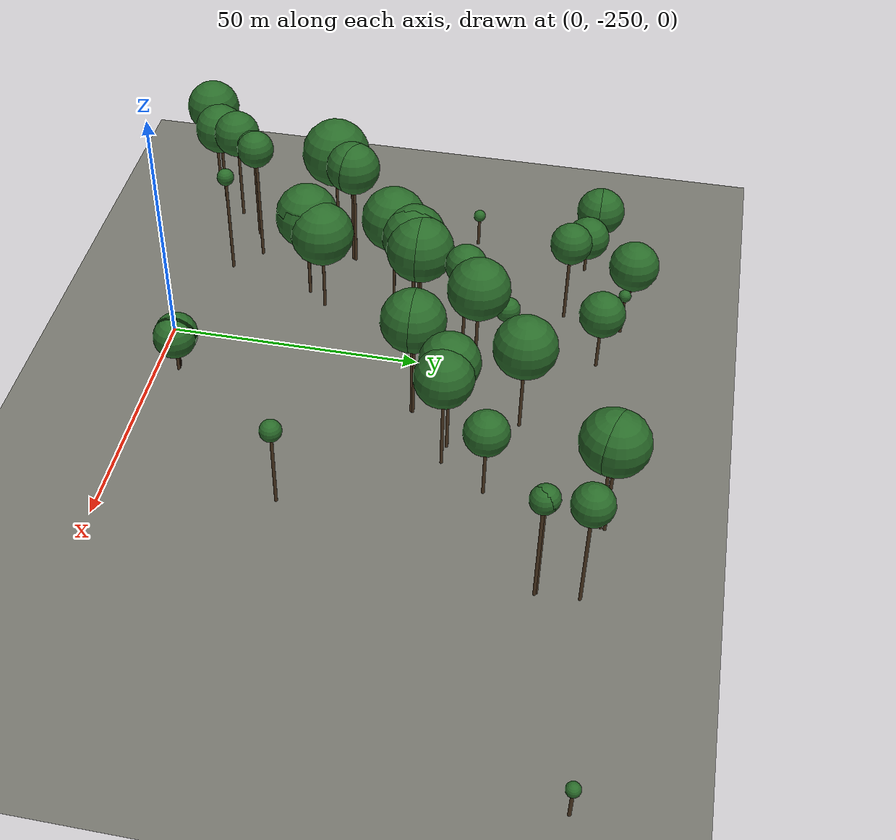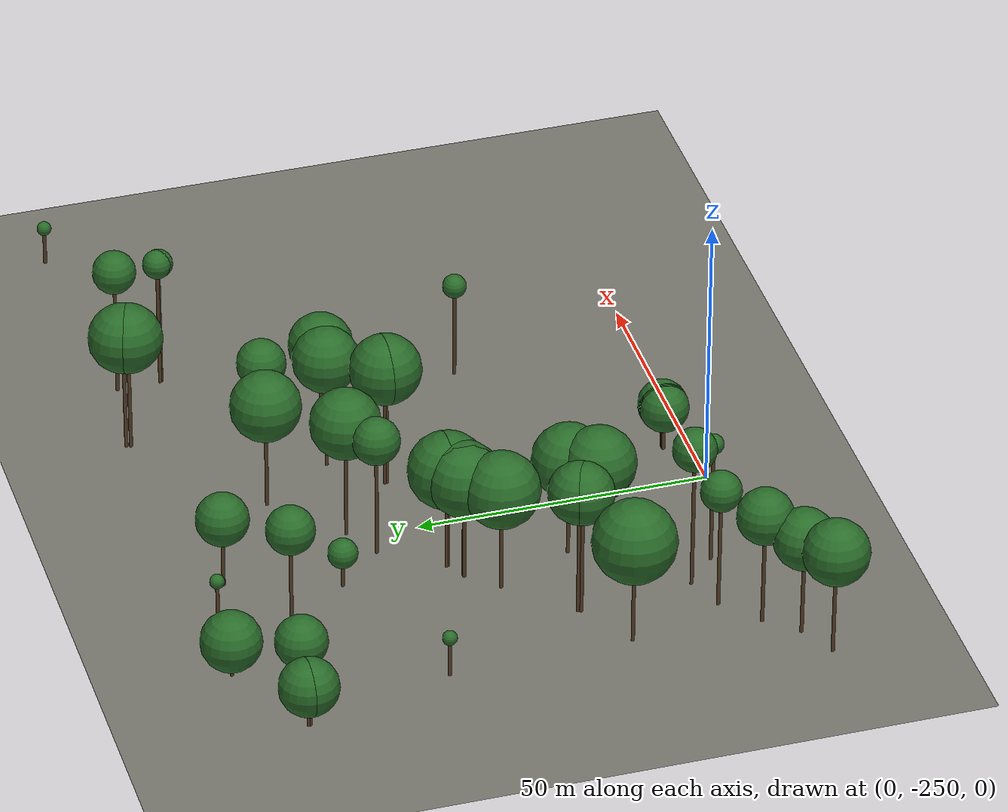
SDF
<sdf version="1.9">
 <world name="uav_arena_bk">
  <model name="ground_plane">
   <static>true</static>
   <link name="link">
    <collision name="collision">
     <geometry><plane><normal>0 0 1</normal><size>1200 1200</size></plane></geometry>
    </collision>
    <visual name="visual">
     <geometry><plane><normal>0 0 1</normal><size>1200 1200</size></plane></geometry>
     <material><ambient>0.35 0.35 0.33 1</ambient><diffuse>0.45 0.45 0.42 1</diffuse></material>
    </visual>
   </link>
  </model>
  <model name="tree_369">
   <static>true</static>
   <pose>92.484 -159.119 0 0 0 0</pose>
   <link name="link">
    <collision name="trunk_collision">
     <pose>0 0 2.960 0 0 0</pose>
     <geometry><cylinder><radius>0.30</radius><length>5.920</length></cylinder></geometry>
    </collision>
    <visual name="trunk_visual">
     <pose>0 0 2.960 0 0 0</pose>
     <geometry><cylinder><radius>0.30</radius><length>5.920</length></cylinder></geometry>
     <material><ambient>0.25 0.18 0.11 1</ambient><diffuse>0.35 0.25 0.15 1</diffuse></material>
    </visual>
    <collision name="canopy_collision">
     <pose>0 0 7.170 0 0 0</pose>
     <geometry><sphere><radius>1.250</radius></sphere></geometry>
    </collision>
    <visual name="canopy_visual">
     <pose>0 0 7.170 0 0 0</pose>
     <geometry><sphere><radius>1.250</radius></sphere></geometry>
     <material><ambient>0.10 0.28 0.10 1</ambient><diffuse>0.16 0.42 0.16 1</diffuse></material>
     <plugin filename="gz-sim-label-system" name="gz::sim::systems::Label"><label>2</label></plugin>
    </visual>
   </link>
  </model>
  <model name="tree_371">
   <static>true</static>
   <pose>35.732 -159.311 0 0 0 0</pose>
   <link name="link">
    <collision name="trunk_collision">
     <pose>0 0 8.100 0 0 0</pose>
     <geometry><cylinder><radius>0.30</radius><length>16.200</length></cylinder></geometry>
    </collision>
    <visual name="trunk_visual">
     <pose>0 0 8.100 0 0 0</pose>
     <geometry><cylinder><radius>0.30</radius><length>16.200</length></cylinder></geometry>
     <material><ambient>0.25 0.18 0.11 1</ambient><diffuse>0.35 0.25 0.15 1</diffuse></material>
    </visual>
    <collision name="canopy_collision">
     <pose>0 0 22.140 0 0 0</pose>
     <geometry><sphere><radius>5.940</radius></sphere></geometry>
    </collision>
    <visual name="canopy_visual">
     <pose>0 0 22.140 0 0 0</pose>
     <geometry><sphere><radius>5.940</radius></sphere></geometry>
     <material><ambient>0.10 0.28 0.10 1</ambient><diffuse>0.16 0.42 0.16 1</diffuse></material>
     <plugin filename="gz-sim-label-system" name="gz::sim::systems::Label"><label>2</label></plugin>
    </visual>
   </link>
  </model>
  <model name="tree_373">
   <static>true</static>
   <pose>35.478 -160.060 0 0 0 0</pose>
   <link name="link">
    <collision name="trunk_collision">
     <pose>0 0 8.100 0 0 0</pose>
     <geometry><cylinder><radius>0.30</radius><length>16.200</length></cylinder></geometry>
    </collision>
    <visual name="trunk_visual">
     <pose>0 0 8.100 0 0 0</pose>
     <geometry><cylinder><radius>0.30</radius><length>16.200</length></cylinder></geometry>
     <material><ambient>0.25 0.18 0.11 1</ambient><diffuse>0.35 0.25 0.15 1</diffuse></material>
    </visual>
    <collision name="canopy_collision">
     <pose>0 0 22.140 0 0 0</pose>
     <geometry><sphere><radius>5.940</radius></sphere></geometry>
    </collision>
    <visual name="canopy_visual">
     <pose>0 0 22.140 0 0 0</pose>
     <geometry><sphere><radius>5.940</radius></sphere></geometry>
     <material><ambient>0.10 0.28 0.10 1</ambient><diffuse>0.16 0.42 0.16 1</diffuse></material>
     <plugin filename="gz-sim-label-system" name="gz::sim::systems::Label"><label>2</label></plugin>
    </visual>
   </link>
  </model>
  <model name="tree_374">
   <static>true</static>
   <pose>-30.023 -160.205 0 0 0 0</pose>
   <link name="link">
    <collision name="trunk_collision">
     <pose>0 0 0.860 0 0 0</pose>
     <geometry><cylinder><radius>0.30</radius><length>1.720</length></cylinder></geometry>
    </collision>
    <visual name="trunk_visual">
     <pose>0 0 0.860 0 0 0</pose>
     <geometry><cylinder><radius>0.30</radius><length>1.720</length></cylinder></geometry>
     <material><ambient>0.25 0.18 0.11 1</ambient><diffuse>0.35 0.25 0.15 1</diffuse></material>
    </visual>
    <collision name="canopy_collision">
     <pose>0 0 6.870 0 0 0</pose>
     <geometry><sphere><radius>5.150</radius></sphere></geometry>
    </collision>
    <visual name="canopy_visual">
     <pose>0 0 6.870 0 0 0</pose>
     <geometry><sphere><radius>5.150</radius></sphere></geometry>
     <material><ambient>0.10 0.28 0.10 1</ambient><diffuse>0.16 0.42 0.16 1</diffuse></material>
     <plugin filename="gz-sim-label-system" name="gz::sim::systems::Label"><label>2</label></plugin>
    </visual>
   </link>
  </model>
  <model name="tree_375">
   <static>true</static>
   <pose>-17.278 -161.274 0 0 0 0</pose>
   <link name="link">
    <collision name="trunk_collision">
     <pose>0 0 4.085 0 0 0</pose>
     <geometry><cylinder><radius>0.30</radius><length>8.170</length></cylinder></geometry>
    </collision>
    <visual name="trunk_visual">
     <pose>0 0 4.085 0 0 0</pose>
     <geometry><cylinder><radius>0.30</radius><length>8.170</length></cylinder></geometry>
     <material><ambient>0.25 0.18 0.11 1</ambient><diffuse>0.35 0.25 0.15 1</diffuse></material>
    </visual>
    <collision name="canopy_collision">
     <pose>0 0 9.420 0 0 0</pose>
     <geometry><sphere><radius>1.250</radius></sphere></geometry>
    </collision>
    <visual name="canopy_visual">
     <pose>0 0 9.420 0 0 0</pose>
     <geometry><sphere><radius>1.250</radius></sphere></geometry>
     <material><ambient>0.10 0.28 0.10 1</ambient><diffuse>0.16 0.42 0.16 1</diffuse></material>
     <plugin filename="gz-sim-label-system" name="gz::sim::systems::Label"><label>2</label></plugin>
    </visual>
   </link>
  </model>
  <model name="tree_377">
   <static>true</static>
   <pose>51.968 -161.899 0 0 0 0</pose>
   <link name="link">
    <collision name="trunk_collision">
     <pose>0 0 10.235 0 0 0</pose>
     <geometry><cylinder><radius>0.30</radius><length>20.470</length></cylinder></geometry>
    </collision>
    <visual name="trunk_visual">
     <pose>0 0 10.235 0 0 0</pose>
     <geometry><cylinder><radius>0.30</radius><length>20.470</length></cylinder></geometry>
     <material><ambient>0.25 0.18 0.11 1</ambient><diffuse>0.35 0.25 0.15 1</diffuse></material>
    </visual>
    <collision name="canopy_collision">
     <pose>0 0 24.190 0 0 0</pose>
     <geometry><sphere><radius>3.720</radius></sphere></geometry>
    </collision>
    <visual name="canopy_visual">
     <pose>0 0 24.190 0 0 0</pose>
     <geometry><sphere><radius>3.720</radius></sphere></geometry>
     <material><ambient>0.10 0.28 0.10 1</ambient><diffuse>0.16 0.42 0.16 1</diffuse></material>
     <plugin filename="gz-sim-label-system" name="gz::sim::systems::Label"><label>2</label></plugin>
    </visual>
   </link>
  </model>
  <model name="tree_379">
   <static>true</static>
   <pose>-6.299 -165.084 0 0 0 0</pose>
   <link name="link">
    <collision name="trunk_collision">
     <pose>0 0 4.430 0 0 0</pose>
     <geometry><cylinder><radius>0.30</radius><length>8.860</length></cylinder></geometry>
    </collision>
    <visual name="trunk_visual">
     <pose>0 0 4.430 0 0 0</pose>
     <geometry><cylinder><radius>0.30</radius><length>8.860</length></cylinder></geometry>
     <material><ambient>0.25 0.18 0.11 1</ambient><diffuse>0.35 0.25 0.15 1</diffuse></material>
    </visual>
    <collision name="canopy_collision">
     <pose>0 0 13.360 0 0 0</pose>
     <geometry><sphere><radius>4.500</radius></sphere></geometry>
    </collision>
    <visual name="canopy_visual">
     <pose>0 0 13.360 0 0 0</pose>
     <geometry><sphere><radius>4.500</radius></sphere></geometry>
     <material><ambient>0.10 0.28 0.10 1</ambient><diffuse>0.16 0.42 0.16 1</diffuse></material>
     <plugin filename="gz-sim-label-system" name="gz::sim::systems::Label"><label>2</label></plugin>
    </visual>
   </link>
  </model>
  <model name="tree_384">
   <static>true</static>
   <pose>-46.068 -168.618 0 0 0 0</pose>
   <link name="link">
    <collision name="trunk_collision">
     <pose>0 0 1.405 0 0 0</pose>
     <geometry><cylinder><radius>0.30</radius><length>2.810</length></cylinder></geometry>
    </collision>
    <visual name="trunk_visual">
     <pose>0 0 1.405 0 0 0</pose>
     <geometry><cylinder><radius>0.30</radius><length>2.810</length></cylinder></geometry>
     <material><ambient>0.25 0.18 0.11 1</ambient><diffuse>0.35 0.25 0.15 1</diffuse></material>
    </visual>
    <collision name="canopy_collision">
     <pose>0 0 7.730 0 0 0</pose>
     <geometry><sphere><radius>4.920</radius></sphere></geometry>
    </collision>
    <visual name="canopy_visual">
     <pose>0 0 7.730 0 0 0</pose>
     <geometry><sphere><radius>4.920</radius></sphere></geometry>
     <material><ambient>0.10 0.28 0.10 1</ambient><diffuse>0.16 0.42 0.16 1</diffuse></material>
     <plugin filename="gz-sim-label-system" name="gz::sim::systems::Label"><label>2</label></plugin>
    </visual>
   </link>
  </model>
  <model name="tree_385">
   <static>true</static>
   <pose>-46.069 -168.868 0 0 0 0</pose>
   <link name="link">
    <collision name="trunk_collision">
     <pose>0 0 1.405 0 0 0</pose>
     <geometry><cylinder><radius>0.30</radius><length>2.810</length></cylinder></geometry>
    </collision>
    <visual name="trunk_visual">
     <pose>0 0 1.405 0 0 0</pose>
     <geometry><cylinder><radius>0.30</radius><length>2.810</length></cylinder></geometry>
     <material><ambient>0.25 0.18 0.11 1</ambient><diffuse>0.35 0.25 0.15 1</diffuse></material>
    </visual>
    <collision name="canopy_collision">
     <pose>0 0 7.730 0 0 0</pose>
     <geometry><sphere><radius>4.920</radius></sphere></geometry>
    </collision>
    <visual name="canopy_visual">
     <pose>0 0 7.730 0 0 0</pose>
     <geometry><sphere><radius>4.920</radius></sphere></geometry>
     <material><ambient>0.10 0.28 0.10 1</ambient><diffuse>0.16 0.42 0.16 1</diffuse></material>
     <plugin filename="gz-sim-label-system" name="gz::sim::systems::Label"><label>2</label></plugin>
    </visual>
   </link>
  </model>
  <model name="tree_386">
   <static>true</static>
   <pose>52.178 -169.401 0 0 0 0</pose>
   <link name="link">
    <collision name="trunk_collision">
     <pose>0 0 10.865 0 0 0</pose>
     <geometry><cylinder><radius>0.30</radius><length>21.730</length></cylinder></geometry>
    </collision>
    <visual name="trunk_visual">
     <pose>0 0 10.865 0 0 0</pose>
     <geometry><cylinder><radius>0.30</radius><length>21.730</length></cylinder></geometry>
     <material><ambient>0.25 0.18 0.11 1</ambient><diffuse>0.35 0.25 0.15 1</diffuse></material>
    </visual>
    <collision name="canopy_collision">
     <pose>0 0 24.230 0 0 0</pose>
     <geometry><sphere><radius>2.500</radius></sphere></geometry>
    </collision>
    <visual name="canopy_visual">
     <pose>0 0 24.230 0 0 0</pose>
     <geometry><sphere><radius>2.500</radius></sphere></geometry>
     <material><ambient>0.10 0.28 0.10 1</ambient><diffuse>0.16 0.42 0.16 1</diffuse></material>
     <plugin filename="gz-sim-label-system" name="gz::sim::systems::Label"><label>2</label></plugin>
    </visual>
   </link>
  </model>
  <model name="tree_387">
   <static>true</static>
   <pose>52.426 -169.652 0 0 0 0</pose>
   <link name="link">
    <collision name="trunk_collision">
     <pose>0 0 10.825 0 0 0</pose>
     <geometry><cylinder><radius>0.30</radius><length>21.650</length></cylinder></geometry>
    </collision>
    <visual name="trunk_visual">
     <pose>0 0 10.825 0 0 0</pose>
     <geometry><cylinder><radius>0.30</radius><length>21.650</length></cylinder></geometry>
     <material><ambient>0.25 0.18 0.11 1</ambient><diffuse>0.35 0.25 0.15 1</diffuse></material>
    </visual>
    <collision name="canopy_collision">
     <pose>0 0 24.150 0 0 0</pose>
     <geometry><sphere><radius>2.500</radius></sphere></geometry>
    </collision>
    <visual name="canopy_visual">
     <pose>0 0 24.150 0 0 0</pose>
     <geometry><sphere><radius>2.500</radius></sphere></geometry>
     <material><ambient>0.10 0.28 0.10 1</ambient><diffuse>0.16 0.42 0.16 1</diffuse></material>
     <plugin filename="gz-sim-label-system" name="gz::sim::systems::Label"><label>2</label></plugin>
    </visual>
   </link>
  </model>
  <model name="tree_388">
   <static>true</static>
   <pose>-35.328 -170.427 0 0 0 0</pose>
   <link name="link">
    <collision name="trunk_collision">
     <pose>0 0 2.080 0 0 0</pose>
     <geometry><cylinder><radius>0.30</radius><length>4.160</length></cylinder></geometry>
    </collision>
    <visual name="trunk_visual">
     <pose>0 0 2.080 0 0 0</pose>
     <geometry><cylinder><radius>0.30</radius><length>4.160</length></cylinder></geometry>
     <material><ambient>0.25 0.18 0.11 1</ambient><diffuse>0.35 0.25 0.15 1</diffuse></material>
    </visual>
    <collision name="canopy_collision">
     <pose>0 0 8.580 0 0 0</pose>
     <geometry><sphere><radius>4.420</radius></sphere></geometry>
    </collision>
    <visual name="canopy_visual">
     <pose>0 0 8.580 0 0 0</pose>
     <geometry><sphere><radius>4.420</radius></sphere></geometry>
     <material><ambient>0.10 0.28 0.10 1</ambient><diffuse>0.16 0.42 0.16 1</diffuse></material>
     <plugin filename="gz-sim-label-system" name="gz::sim::systems::Label"><label>2</label></plugin>
    </visual>
   </link>
  </model>
  <model name="tree_390">
   <static>true</static>
   <pose>-19.592 -173.012 0 0 0 0</pose>
   <link name="link">
    <collision name="trunk_collision">
     <pose>0 0 7.435 0 0 0</pose>
     <geometry><cylinder><radius>0.30</radius><length>14.870</length></cylinder></geometry>
    </collision>
    <visual name="trunk_visual">
     <pose>0 0 7.435 0 0 0</pose>
     <geometry><cylinder><radius>0.30</radius><length>14.870</length></cylinder></geometry>
     <material><ambient>0.25 0.18 0.11 1</ambient><diffuse>0.35 0.25 0.15 1</diffuse></material>
    </visual>
    <collision name="canopy_collision">
     <pose>0 0 18.990 0 0 0</pose>
     <geometry><sphere><radius>4.120</radius></sphere></geometry>
    </collision>
    <visual name="canopy_visual">
     <pose>0 0 18.990 0 0 0</pose>
     <geometry><sphere><radius>4.120</radius></sphere></geometry>
     <material><ambient>0.10 0.28 0.10 1</ambient><diffuse>0.16 0.42 0.16 1</diffuse></material>
     <plugin filename="gz-sim-label-system" name="gz::sim::systems::Label"><label>2</label></plugin>
    </visual>
   </link>
  </model>
  <model name="tree_395">
   <static>true</static>
   <pose>13.133 -177.689 0 0 0 0</pose>
   <link name="link">
    <collision name="trunk_collision">
     <pose>0 0 7.040 0 0 0</pose>
     <geometry><cylinder><radius>0.30</radius><length>14.080</length></cylinder></geometry>
    </collision>
    <visual name="trunk_visual">
     <pose>0 0 7.040 0 0 0</pose>
     <geometry><cylinder><radius>0.30</radius><length>14.080</length></cylinder></geometry>
     <material><ambient>0.25 0.18 0.11 1</ambient><diffuse>0.35 0.25 0.15 1</diffuse></material>
    </visual>
    <collision name="canopy_collision">
     <pose>0 0 20.120 0 0 0</pose>
     <geometry><sphere><radius>6.040</radius></sphere></geometry>
    </collision>
    <visual name="canopy_visual">
     <pose>0 0 20.120 0 0 0</pose>
     <geometry><sphere><radius>6.040</radius></sphere></geometry>
     <material><ambient>0.10 0.28 0.10 1</ambient><diffuse>0.16 0.42 0.16 1</diffuse></material>
     <plugin filename="gz-sim-label-system" name="gz::sim::systems::Label"><label>2</label></plugin>
    </visual>
   </link>
  </model>
  <model name="tree_401">
   <static>true</static>
   <pose>31.361 -181.788 0 0 0 0</pose>
   <link name="link">
    <collision name="trunk_collision">
     <pose>0 0 5.635 0 0 0</pose>
     <geometry><cylinder><radius>0.30</radius><length>11.270</length></cylinder></geometry>
    </collision>
    <visual name="trunk_visual">
     <pose>0 0 5.635 0 0 0</pose>
     <geometry><cylinder><radius>0.30</radius><length>11.270</length></cylinder></geometry>
     <material><ambient>0.25 0.18 0.11 1</ambient><diffuse>0.35 0.25 0.15 1</diffuse></material>
    </visual>
    <collision name="canopy_collision">
     <pose>0 0 15.510 0 0 0</pose>
     <geometry><sphere><radius>4.240</radius></sphere></geometry>
    </collision>
    <visual name="canopy_visual">
     <pose>0 0 15.510 0 0 0</pose>
     <geometry><sphere><radius>4.240</radius></sphere></geometry>
     <material><ambient>0.10 0.28 0.10 1</ambient><diffuse>0.16 0.42 0.16 1</diffuse></material>
     <plugin filename="gz-sim-label-system" name="gz::sim::systems::Label"><label>2</label></plugin>
    </visual>
   </link>
  </model>
  <model name="tree_403">
   <static>true</static>
   <pose>-11.900 -183.804 0 0 0 0</pose>
   <link name="link">
    <collision name="trunk_collision">
     <pose>0 0 2.020 0 0 0</pose>
     <geometry><cylinder><radius>0.30</radius><length>4.040</length></cylinder></geometry>
    </collision>
    <visual name="trunk_visual">
     <pose>0 0 2.020 0 0 0</pose>
     <geometry><cylinder><radius>0.30</radius><length>4.040</length></cylinder></geometry>
     <material><ambient>0.25 0.18 0.11 1</ambient><diffuse>0.35 0.25 0.15 1</diffuse></material>
    </visual>
    <collision name="canopy_collision">
     <pose>0 0 6.590 0 0 0</pose>
     <geometry><sphere><radius>2.550</radius></sphere></geometry>
    </collision>
    <visual name="canopy_visual">
     <pose>0 0 6.590 0 0 0</pose>
     <geometry><sphere><radius>2.550</radius></sphere></geometry>
     <material><ambient>0.10 0.28 0.10 1</ambient><diffuse>0.16 0.42 0.16 1</diffuse></material>
     <plugin filename="gz-sim-label-system" name="gz::sim::systems::Label"><label>2</label></plugin>
    </visual>
   </link>
  </model>
  <model name="tree_405">
   <static>true</static>
   <pose>1.576 -188.127 0 0 0 0</pose>
   <link name="link">
    <collision name="trunk_collision">
     <pose>0 0 8.220 0 0 0</pose>
     <geometry><cylinder><radius>0.30</radius><length>16.440</length></cylinder></geometry>
    </collision>
    <visual name="trunk_visual">
     <pose>0 0 8.220 0 0 0</pose>
     <geometry><cylinder><radius>0.30</radius><length>16.440</length></cylinder></geometry>
     <material><ambient>0.25 0.18 0.11 1</ambient><diffuse>0.35 0.25 0.15 1</diffuse></material>
    </visual>
    <collision name="canopy_collision">
     <pose>0 0 22.460 0 0 0</pose>
     <geometry><sphere><radius>6.020</radius></sphere></geometry>
    </collision>
    <visual name="canopy_visual">
     <pose>0 0 22.460 0 0 0</pose>
     <geometry><sphere><radius>6.020</radius></sphere></geometry>
     <material><ambient>0.10 0.28 0.10 1</ambient><diffuse>0.16 0.42 0.16 1</diffuse></material>
     <plugin filename="gz-sim-label-system" name="gz::sim::systems::Label"><label>2</label></plugin>
    </visual>
   </link>
  </model>
  <model name="tree_407">
   <static>true</static>
   <pose>21.315 -190.233 0 0 0 0</pose>
   <link name="link">
    <collision name="trunk_collision">
     <pose>0 0 7.915 0 0 0</pose>
     <geometry><cylinder><radius>0.30</radius><length>15.830</length></cylinder></geometry>
    </collision>
    <visual name="trunk_visual">
     <pose>0 0 7.915 0 0 0</pose>
     <geometry><cylinder><radius>0.30</radius><length>15.830</length></cylinder></geometry>
     <material><ambient>0.25 0.18 0.11 1</ambient><diffuse>0.35 0.25 0.15 1</diffuse></material>
    </visual>
    <collision name="canopy_collision">
     <pose>0 0 21.530 0 0 0</pose>
     <geometry><sphere><radius>5.700</radius></sphere></geometry>
    </collision>
    <visual name="canopy_visual">
     <pose>0 0 21.530 0 0 0</pose>
     <geometry><sphere><radius>5.700</radius></sphere></geometry>
     <material><ambient>0.10 0.28 0.10 1</ambient><diffuse>0.16 0.42 0.16 1</diffuse></material>
     <plugin filename="gz-sim-label-system" name="gz::sim::systems::Label"><label>2</label></plugin>
    </visual>
   </link>
  </model>
  <model name="tree_408">
   <static>true</static>
   <pose>25.563 -190.506 0 0 0 0</pose>
   <link name="link">
    <collision name="trunk_collision">
     <pose>0 0 8.045 0 0 0</pose>
     <geometry><cylinder><radius>0.30</radius><length>16.090</length></cylinder></geometry>
    </collision>
    <visual name="trunk_visual">
     <pose>0 0 8.045 0 0 0</pose>
     <geometry><cylinder><radius>0.30</radius><length>16.090</length></cylinder></geometry>
     <material><ambient>0.25 0.18 0.11 1</ambient><diffuse>0.35 0.25 0.15 1</diffuse></material>
    </visual>
    <collision name="canopy_collision">
     <pose>0 0 21.590 0 0 0</pose>
     <geometry><sphere><radius>5.500</radius></sphere></geometry>
    </collision>
    <visual name="canopy_visual">
     <pose>0 0 21.590 0 0 0</pose>
     <geometry><sphere><radius>5.500</radius></sphere></geometry>
     <material><ambient>0.10 0.28 0.10 1</ambient><diffuse>0.16 0.42 0.16 1</diffuse></material>
     <plugin filename="gz-sim-label-system" name="gz::sim::systems::Label"><label>2</label></plugin>
    </visual>
   </link>
  </model>
  <model name="tree_409">
   <static>true</static>
   <pose>-4.692 -191.593 0 0 0 0</pose>
   <link name="link">
    <collision name="trunk_collision">
     <pose>0 0 9.280 0 0 0</pose>
     <geometry><cylinder><radius>0.30</radius><length>18.560</length></cylinder></geometry>
    </collision>
    <visual name="trunk_visual">
     <pose>0 0 9.280 0 0 0</pose>
     <geometry><cylinder><radius>0.30</radius><length>18.560</length></cylinder></geometry>
     <material><ambient>0.25 0.18 0.11 1</ambient><diffuse>0.35 0.25 0.15 1</diffuse></material>
    </visual>
    <collision name="canopy_collision">
     <pose>0 0 22.590 0 0 0</pose>
     <geometry><sphere><radius>4.030</radius></sphere></geometry>
    </collision>
    <visual name="canopy_visual">
     <pose>0 0 22.590 0 0 0</pose>
     <geometry><sphere><radius>4.030</radius></sphere></geometry>
     <material><ambient>0.10 0.28 0.10 1</ambient><diffuse>0.16 0.42 0.16 1</diffuse></material>
     <plugin filename="gz-sim-label-system" name="gz::sim::systems::Label"><label>2</label></plugin>
    </visual>
   </link>
  </model>
  <model name="tree_411">
   <static>true</static>
   <pose>-39.705 -193.903 0 0 0 0</pose>
   <link name="link">
    <collision name="trunk_collision">
     <pose>0 0 3.110 0 0 0</pose>
     <geometry><cylinder><radius>0.30</radius><length>6.220</length></cylinder></geometry>
    </collision>
    <visual name="trunk_visual">
     <pose>0 0 3.110 0 0 0</pose>
     <geometry><cylinder><radius>0.30</radius><length>6.220</length></cylinder></geometry>
     <material><ambient>0.25 0.18 0.11 1</ambient><diffuse>0.35 0.25 0.15 1</diffuse></material>
    </visual>
    <collision name="canopy_collision">
     <pose>0 0 7.470 0 0 0</pose>
     <geometry><sphere><radius>1.250</radius></sphere></geometry>
    </collision>
    <visual name="canopy_visual">
     <pose>0 0 7.470 0 0 0</pose>
     <geometry><sphere><radius>1.250</radius></sphere></geometry>
     <material><ambient>0.10 0.28 0.10 1</ambient><diffuse>0.16 0.42 0.16 1</diffuse></material>
     <plugin filename="gz-sim-label-system" name="gz::sim::systems::Label"><label>2</label></plugin>
    </visual>
   </link>
  </model>
  <model name="tree_415">
   <static>true</static>
   <pose>13.522 -198.191 0 0 0 0</pose>
   <link name="link">
    <collision name="trunk_collision">
     <pose>0 0 8.600 0 0 0</pose>
     <geometry><cylinder><radius>0.30</radius><length>17.200</length></cylinder></geometry>
    </collision>
    <visual name="trunk_visual">
     <pose>0 0 8.600 0 0 0</pose>
     <geometry><cylinder><radius>0.30</radius><length>17.200</length></cylinder></geometry>
     <material><ambient>0.25 0.18 0.11 1</ambient><diffuse>0.35 0.25 0.15 1</diffuse></material>
    </visual>
    <collision name="canopy_collision">
     <pose>0 0 23.220 0 0 0</pose>
     <geometry><sphere><radius>6.020</radius></sphere></geometry>
    </collision>
    <visual name="canopy_visual">
     <pose>0 0 23.220 0 0 0</pose>
     <geometry><sphere><radius>6.020</radius></sphere></geometry>
     <material><ambient>0.10 0.28 0.10 1</ambient><diffuse>0.16 0.42 0.16 1</diffuse></material>
     <plugin filename="gz-sim-label-system" name="gz::sim::systems::Label"><label>2</label></plugin>
    </visual>
   </link>
  </model>
  <model name="tree_416">
   <static>true</static>
   <pose>13.520 -198.441 0 0 0 0</pose>
   <link name="link">
    <collision name="trunk_collision">
     <pose>0 0 8.600 0 0 0</pose>
     <geometry><cylinder><radius>0.30</radius><length>17.200</length></cylinder></geometry>
    </collision>
    <visual name="trunk_visual">
     <pose>0 0 8.600 0 0 0</pose>
     <geometry><cylinder><radius>0.30</radius><length>17.200</length></cylinder></geometry>
     <material><ambient>0.25 0.18 0.11 1</ambient><diffuse>0.35 0.25 0.15 1</diffuse></material>
    </visual>
    <collision name="canopy_collision">
     <pose>0 0 23.220 0 0 0</pose>
     <geometry><sphere><radius>6.020</radius></sphere></geometry>
    </collision>
    <visual name="canopy_visual">
     <pose>0 0 23.220 0 0 0</pose>
     <geometry><sphere><radius>6.020</radius></sphere></geometry>
     <material><ambient>0.10 0.28 0.10 1</ambient><diffuse>0.16 0.42 0.16 1</diffuse></material>
     <plugin filename="gz-sim-label-system" name="gz::sim::systems::Label"><label>2</label></plugin>
    </visual>
   </link>
  </model>
  <model name="tree_417">
   <static>true</static>
   <pose>-11.496 -201.556 0 0 0 0</pose>
   <link name="link">
    <collision name="trunk_collision">
     <pose>0 0 6.470 0 0 0</pose>
     <geometry><cylinder><radius>0.30</radius><length>12.940</length></cylinder></geometry>
    </collision>
    <visual name="trunk_visual">
     <pose>0 0 6.470 0 0 0</pose>
     <geometry><cylinder><radius>0.30</radius><length>12.940</length></cylinder></geometry>
     <material><ambient>0.25 0.18 0.11 1</ambient><diffuse>0.35 0.25 0.15 1</diffuse></material>
    </visual>
    <collision name="canopy_collision">
     <pose>0 0 19.500 0 0 0</pose>
     <geometry><sphere><radius>6.560</radius></sphere></geometry>
    </collision>
    <visual name="canopy_visual">
     <pose>0 0 19.500 0 0 0</pose>
     <geometry><sphere><radius>6.560</radius></sphere></geometry>
     <material><ambient>0.10 0.28 0.10 1</ambient><diffuse>0.16 0.42 0.16 1</diffuse></material>
     <plugin filename="gz-sim-label-system" name="gz::sim::systems::Label"><label>2</label></plugin>
    </visual>
   </link>
  </model>
  <model name="tree_418">
   <static>true</static>
   <pose>-11.498 -201.806 0 0 0 0</pose>
   <link name="link">
    <collision name="trunk_collision">
     <pose>0 0 6.470 0 0 0</pose>
     <geometry><cylinder><radius>0.30</radius><length>12.940</length></cylinder></geometry>
    </collision>
    <visual name="trunk_visual">
     <pose>0 0 6.470 0 0 0</pose>
     <geometry><cylinder><radius>0.30</radius><length>12.940</length></cylinder></geometry>
     <material><ambient>0.25 0.18 0.11 1</ambient><diffuse>0.35 0.25 0.15 1</diffuse></material>
    </visual>
    <collision name="canopy_collision">
     <pose>0 0 19.500 0 0 0</pose>
     <geometry><sphere><radius>6.560</radius></sphere></geometry>
    </collision>
    <visual name="canopy_visual">
     <pose>0 0 19.500 0 0 0</pose>
     <geometry><sphere><radius>6.560</radius></sphere></geometry>
     <material><ambient>0.10 0.28 0.10 1</ambient><diffuse>0.16 0.42 0.16 1</diffuse></material>
     <plugin filename="gz-sim-label-system" name="gz::sim::systems::Label"><label>2</label></plugin>
    </visual>
   </link>
  </model>
  <model name="tree_419">
   <static>true</static>
   <pose>-15.007 -203.537 0 0 0 0</pose>
   <link name="link">
    <collision name="trunk_collision">
     <pose>0 0 6.665 0 0 0</pose>
     <geometry><cylinder><radius>0.30</radius><length>13.330</length></cylinder></geometry>
    </collision>
    <visual name="trunk_visual">
     <pose>0 0 6.665 0 0 0</pose>
     <geometry><cylinder><radius>0.30</radius><length>13.330</length></cylinder></geometry>
     <material><ambient>0.25 0.18 0.11 1</ambient><diffuse>0.35 0.25 0.15 1</diffuse></material>
    </visual>
    <collision name="canopy_collision">
     <pose>0 0 19.700 0 0 0</pose>
     <geometry><sphere><radius>6.370</radius></sphere></geometry>
    </collision>
    <visual name="canopy_visual">
     <pose>0 0 19.700 0 0 0</pose>
     <geometry><sphere><radius>6.370</radius></sphere></geometry>
     <material><ambient>0.10 0.28 0.10 1</ambient><diffuse>0.16 0.42 0.16 1</diffuse></material>
     <plugin filename="gz-sim-label-system" name="gz::sim::systems::Label"><label>2</label></plugin>
    </visual>
   </link>
  </model>
  <model name="tree_420">
   <static>true</static>
   <pose>-14.757 -203.538 0 0 0 0</pose>
   <link name="link">
    <collision name="trunk_collision">
     <pose>0 0 6.660 0 0 0</pose>
     <geometry><cylinder><radius>0.30</radius><length>13.320</length></cylinder></geometry>
    </collision>
    <visual name="trunk_visual">
     <pose>0 0 6.660 0 0 0</pose>
     <geometry><cylinder><radius>0.30</radius><length>13.320</length></cylinder></geometry>
     <material><ambient>0.25 0.18 0.11 1</ambient><diffuse>0.35 0.25 0.15 1</diffuse></material>
    </visual>
    <collision name="canopy_collision">
     <pose>0 0 19.690 0 0 0</pose>
     <geometry><sphere><radius>6.370</radius></sphere></geometry>
    </collision>
    <visual name="canopy_visual">
     <pose>0 0 19.690 0 0 0</pose>
     <geometry><sphere><radius>6.370</radius></sphere></geometry>
     <material><ambient>0.10 0.28 0.10 1</ambient><diffuse>0.16 0.42 0.16 1</diffuse></material>
     <plugin filename="gz-sim-label-system" name="gz::sim::systems::Label"><label>2</label></plugin>
    </visual>
   </link>
  </model>
  <model name="tree_423">
   <static>true</static>
   <pose>-19.534 -208.512 0 0 0 0</pose>
   <link name="link">
    <collision name="trunk_collision">
     <pose>0 0 6.635 0 0 0</pose>
     <geometry><cylinder><radius>0.30</radius><length>13.270</length></cylinder></geometry>
    </collision>
    <visual name="trunk_visual">
     <pose>0 0 6.635 0 0 0</pose>
     <geometry><cylinder><radius>0.30</radius><length>13.270</length></cylinder></geometry>
     <material><ambient>0.25 0.18 0.11 1</ambient><diffuse>0.35 0.25 0.15 1</diffuse></material>
    </visual>
    <collision name="canopy_collision">
     <pose>0 0 19.760 0 0 0</pose>
     <geometry><sphere><radius>6.490</radius></sphere></geometry>
    </collision>
    <visual name="canopy_visual">
     <pose>0 0 19.760 0 0 0</pose>
     <geometry><sphere><radius>6.490</radius></sphere></geometry>
     <material><ambient>0.10 0.28 0.10 1</ambient><diffuse>0.16 0.42 0.16 1</diffuse></material>
     <plugin filename="gz-sim-label-system" name="gz::sim::systems::Label"><label>2</label></plugin>
    </visual>
   </link>
  </model>
  <model name="tree_428">
   <static>true</static>
   <pose>40.664 -218.088 0 0 0 0</pose>
   <link name="link">
    <collision name="trunk_collision">
     <pose>0 0 8.000 0 0 0</pose>
     <geometry><cylinder><radius>0.30</radius><length>16.000</length></cylinder></geometry>
    </collision>
    <visual name="trunk_visual">
     <pose>0 0 8.000 0 0 0</pose>
     <geometry><cylinder><radius>0.30</radius><length>16.000</length></cylinder></geometry>
     <material><ambient>0.25 0.18 0.11 1</ambient><diffuse>0.35 0.25 0.15 1</diffuse></material>
    </visual>
    <collision name="canopy_collision">
     <pose>0 0 18.060 0 0 0</pose>
     <geometry><sphere><radius>2.060</radius></sphere></geometry>
    </collision>
    <visual name="canopy_visual">
     <pose>0 0 18.060 0 0 0</pose>
     <geometry><sphere><radius>2.060</radius></sphere></geometry>
     <material><ambient>0.10 0.28 0.10 1</ambient><diffuse>0.16 0.42 0.16 1</diffuse></material>
     <plugin filename="gz-sim-label-system" name="gz::sim::systems::Label"><label>2</label></plugin>
    </visual>
   </link>
  </model>
  <model name="tree_429">
   <static>true</static>
   <pose>-29.089 -218.711 0 0 0 0</pose>
   <link name="link">
    <collision name="trunk_collision">
     <pose>0 0 9.255 0 0 0</pose>
     <geometry><cylinder><radius>0.30</radius><length>18.510</length></cylinder></geometry>
    </collision>
    <visual name="trunk_visual">
     <pose>0 0 9.255 0 0 0</pose>
     <geometry><cylinder><radius>0.30</radius><length>18.510</length></cylinder></geometry>
     <material><ambient>0.25 0.18 0.11 1</ambient><diffuse>0.35 0.25 0.15 1</diffuse></material>
    </visual>
    <collision name="canopy_collision">
     <pose>0 0 23.780 0 0 0</pose>
     <geometry><sphere><radius>5.270</radius></sphere></geometry>
    </collision>
    <visual name="canopy_visual">
     <pose>0 0 23.780 0 0 0</pose>
     <geometry><sphere><radius>5.270</radius></sphere></geometry>
     <material><ambient>0.10 0.28 0.10 1</ambient><diffuse>0.16 0.42 0.16 1</diffuse></material>
     <plugin filename="gz-sim-label-system" name="gz::sim::systems::Label"><label>2</label></plugin>
    </visual>
   </link>
  </model>
  <model name="tree_430">
   <static>true</static>
   <pose>-29.342 -219.209 0 0 0 0</pose>
   <link name="link">
    <collision name="trunk_collision">
     <pose>0 0 9.255 0 0 0</pose>
     <geometry><cylinder><radius>0.30</radius><length>18.510</length></cylinder></geometry>
    </collision>
    <visual name="trunk_visual">
     <pose>0 0 9.255 0 0 0</pose>
     <geometry><cylinder><radius>0.30</radius><length>18.510</length></cylinder></geometry>
     <material><ambient>0.25 0.18 0.11 1</ambient><diffuse>0.35 0.25 0.15 1</diffuse></material>
    </visual>
    <collision name="canopy_collision">
     <pose>0 0 23.780 0 0 0</pose>
     <geometry><sphere><radius>5.270</radius></sphere></geometry>
    </collision>
    <visual name="canopy_visual">
     <pose>0 0 23.780 0 0 0</pose>
     <geometry><sphere><radius>5.270</radius></sphere></geometry>
     <material><ambient>0.10 0.28 0.10 1</ambient><diffuse>0.16 0.42 0.16 1</diffuse></material>
     <plugin filename="gz-sim-label-system" name="gz::sim::systems::Label"><label>2</label></plugin>
    </visual>
   </link>
  </model>
  <model name="tree_431">
   <static>true</static>
   <pose>-13.356 -221.796 0 0 0 0</pose>
   <link name="link">
    <collision name="trunk_collision">
     <pose>0 0 6.190 0 0 0</pose>
     <geometry><cylinder><radius>0.30</radius><length>12.380</length></cylinder></geometry>
    </collision>
    <visual name="trunk_visual">
     <pose>0 0 6.190 0 0 0</pose>
     <geometry><cylinder><radius>0.30</radius><length>12.380</length></cylinder></geometry>
     <material><ambient>0.25 0.18 0.11 1</ambient><diffuse>0.35 0.25 0.15 1</diffuse></material>
    </visual>
    <collision name="canopy_collision">
     <pose>0 0 18.700 0 0 0</pose>
     <geometry><sphere><radius>6.320</radius></sphere></geometry>
    </collision>
    <visual name="canopy_visual">
     <pose>0 0 18.700 0 0 0</pose>
     <geometry><sphere><radius>6.320</radius></sphere></geometry>
     <material><ambient>0.10 0.28 0.10 1</ambient><diffuse>0.16 0.42 0.16 1</diffuse></material>
     <plugin filename="gz-sim-label-system" name="gz::sim::systems::Label"><label>2</label></plugin>
    </visual>
   </link>
  </model>
  <model name="tree_432">
   <static>true</static>
   <pose>-39.123 -224.906 0 0 0 0</pose>
   <link name="link">
    <collision name="trunk_collision">
     <pose>0 0 6.420 0 0 0</pose>
     <geometry><cylinder><radius>0.30</radius><length>12.840</length></cylinder></geometry>
    </collision>
    <visual name="trunk_visual">
     <pose>0 0 6.420 0 0 0</pose>
     <geometry><cylinder><radius>0.30</radius><length>12.840</length></cylinder></geometry>
     <material><ambient>0.25 0.18 0.11 1</ambient><diffuse>0.35 0.25 0.15 1</diffuse></material>
    </visual>
    <collision name="canopy_collision">
     <pose>0 0 19.920 0 0 0</pose>
     <geometry><sphere><radius>7.080</radius></sphere></geometry>
    </collision>
    <visual name="canopy_visual">
     <pose>0 0 19.920 0 0 0</pose>
     <geometry><sphere><radius>7.080</radius></sphere></geometry>
     <material><ambient>0.10 0.28 0.10 1</ambient><diffuse>0.16 0.42 0.16 1</diffuse></material>
     <plugin filename="gz-sim-label-system" name="gz::sim::systems::Label"><label>2</label></plugin>
    </visual>
   </link>
  </model>
  <model name="tree_433">
   <static>true</static>
   <pose>-17.128 -225.775 0 0 0 0</pose>
   <link name="link">
    <collision name="trunk_collision">
     <pose>0 0 6.890 0 0 0</pose>
     <geometry><cylinder><radius>0.30</radius><length>13.780</length></cylinder></geometry>
    </collision>
    <visual name="trunk_visual">
     <pose>0 0 6.890 0 0 0</pose>
     <geometry><cylinder><radius>0.30</radius><length>13.780</length></cylinder></geometry>
     <material><ambient>0.25 0.18 0.11 1</ambient><diffuse>0.35 0.25 0.15 1</diffuse></material>
    </visual>
    <collision name="canopy_collision">
     <pose>0 0 20.030 0 0 0</pose>
     <geometry><sphere><radius>6.250</radius></sphere></geometry>
    </collision>
    <visual name="canopy_visual">
     <pose>0 0 20.030 0 0 0</pose>
     <geometry><sphere><radius>6.250</radius></sphere></geometry>
     <material><ambient>0.10 0.28 0.10 1</ambient><diffuse>0.16 0.42 0.16 1</diffuse></material>
     <plugin filename="gz-sim-label-system" name="gz::sim::systems::Label"><label>2</label></plugin>
    </visual>
   </link>
  </model>
  <model name="tree_434">
   <static>true</static>
   <pose>-16.878 -225.777 0 0 0 0</pose>
   <link name="link">
    <collision name="trunk_collision">
     <pose>0 0 6.695 0 0 0</pose>
     <geometry><cylinder><radius>0.30</radius><length>13.390</length></cylinder></geometry>
    </collision>
    <visual name="trunk_visual">
     <pose>0 0 6.695 0 0 0</pose>
     <geometry><cylinder><radius>0.30</radius><length>13.390</length></cylinder></geometry>
     <material><ambient>0.25 0.18 0.11 1</ambient><diffuse>0.35 0.25 0.15 1</diffuse></material>
    </visual>
    <collision name="canopy_collision">
     <pose>0 0 19.640 0 0 0</pose>
     <geometry><sphere><radius>6.250</radius></sphere></geometry>
    </collision>
    <visual name="canopy_visual">
     <pose>0 0 19.640 0 0 0</pose>
     <geometry><sphere><radius>6.250</radius></sphere></geometry>
     <material><ambient>0.10 0.28 0.10 1</ambient><diffuse>0.16 0.42 0.16 1</diffuse></material>
     <plugin filename="gz-sim-label-system" name="gz::sim::systems::Label"><label>2</label></plugin>
    </visual>
   </link>
  </model>
  <model name="tree_436">
   <static>true</static>
   <pose>-27.198 -238.721 0 0 0 0</pose>
   <link name="link">
    <collision name="trunk_collision">
     <pose>0 0 11.635 0 0 0</pose>
     <geometry><cylinder><radius>0.30</radius><length>23.270</length></cylinder></geometry>
    </collision>
    <visual name="trunk_visual">
     <pose>0 0 11.635 0 0 0</pose>
     <geometry><cylinder><radius>0.30</radius><length>23.270</length></cylinder></geometry>
     <material><ambient>0.25 0.18 0.11 1</ambient><diffuse>0.35 0.25 0.15 1</diffuse></material>
    </visual>
    <collision name="canopy_collision">
     <pose>0 0 26.990 0 0 0</pose>
     <geometry><sphere><radius>3.720</radius></sphere></geometry>
    </collision>
    <visual name="canopy_visual">
     <pose>0 0 26.990 0 0 0</pose>
     <geometry><sphere><radius>3.720</radius></sphere></geometry>
     <material><ambient>0.10 0.28 0.10 1</ambient><diffuse>0.16 0.42 0.16 1</diffuse></material>
     <plugin filename="gz-sim-label-system" name="gz::sim::systems::Label"><label>2</label></plugin>
    </visual>
   </link>
  </model>
  <model name="tree_437">
   <static>true</static>
   <pose>-33.711 -241.186 0 0 0 0</pose>
   <link name="link">
    <collision name="trunk_collision">
     <pose>0 0 9.650 0 0 0</pose>
     <geometry><cylinder><radius>0.30</radius><length>19.300</length></cylinder></geometry>
    </collision>
    <visual name="trunk_visual">
     <pose>0 0 9.650 0 0 0</pose>
     <geometry><cylinder><radius>0.30</radius><length>19.300</length></cylinder></geometry>
     <material><ambient>0.25 0.18 0.11 1</ambient><diffuse>0.35 0.25 0.15 1</diffuse></material>
    </visual>
    <collision name="canopy_collision">
     <pose>0 0 22.770 0 0 0</pose>
     <geometry><sphere><radius>3.470</radius></sphere></geometry>
    </collision>
    <visual name="canopy_visual">
     <pose>0 0 22.770 0 0 0</pose>
     <geometry><sphere><radius>3.470</radius></sphere></geometry>
     <material><ambient>0.10 0.28 0.10 1</ambient><diffuse>0.16 0.42 0.16 1</diffuse></material>
     <plugin filename="gz-sim-label-system" name="gz::sim::systems::Label"><label>2</label></plugin>
    </visual>
   </link>
  </model>
  <model name="tree_438">
   <static>true</static>
   <pose>-21.725 -243.751 0 0 0 0</pose>
   <link name="link">
    <collision name="trunk_collision">
     <pose>0 0 10.750 0 0 0</pose>
     <geometry><cylinder><radius>0.30</radius><length>21.500</length></cylinder></geometry>
    </collision>
    <visual name="trunk_visual">
     <pose>0 0 10.750 0 0 0</pose>
     <geometry><cylinder><radius>0.30</radius><length>21.500</length></cylinder></geometry>
     <material><ambient>0.25 0.18 0.11 1</ambient><diffuse>0.35 0.25 0.15 1</diffuse></material>
    </visual>
    <collision name="canopy_collision">
     <pose>0 0 23.250 0 0 0</pose>
     <geometry><sphere><radius>1.750</radius></sphere></geometry>
    </collision>
    <visual name="canopy_visual">
     <pose>0 0 23.250 0 0 0</pose>
     <geometry><sphere><radius>1.750</radius></sphere></geometry>
     <material><ambient>0.10 0.28 0.10 1</ambient><diffuse>0.16 0.42 0.16 1</diffuse></material>
     <plugin filename="gz-sim-label-system" name="gz::sim::systems::Label"><label>2</label></plugin>
    </visual>
   </link>
  </model>
  <model name="tree_439">
   <static>true</static>
   <pose>10.015 -245.673 0 0 0 0</pose>
   <link name="link">
    <collision name="trunk_collision">
     <pose>0 0 2.110 0 0 0</pose>
     <geometry><cylinder><radius>0.30</radius><length>4.220</length></cylinder></geometry>
    </collision>
    <visual name="trunk_visual">
     <pose>0 0 2.110 0 0 0</pose>
     <geometry><cylinder><radius>0.30</radius><length>4.220</length></cylinder></geometry>
     <material><ambient>0.25 0.18 0.11 1</ambient><diffuse>0.35 0.25 0.15 1</diffuse></material>
    </visual>
    <collision name="canopy_collision">
     <pose>0 0 8.470 0 0 0</pose>
     <geometry><sphere><radius>4.250</radius></sphere></geometry>
    </collision>
    <visual name="canopy_visual">
     <pose>0 0 8.470 0 0 0</pose>
     <geometry><sphere><radius>4.250</radius></sphere></geometry>
     <material><ambient>0.10 0.28 0.10 1</ambient><diffuse>0.16 0.42 0.16 1</diffuse></material>
     <plugin filename="gz-sim-label-system" name="gz::sim::systems::Label"><label>2</label></plugin>
    </visual>
   </link>
  </model>
  <model name="tree_440">
   <static>true</static>
   <pose>10.265 -245.674 0 0 0 0</pose>
   <link name="link">
    <collision name="trunk_collision">
     <pose>0 0 2.110 0 0 0</pose>
     <geometry><cylinder><radius>0.30</radius><length>4.220</length></cylinder></geometry>
    </collision>
    <visual name="trunk_visual">
     <pose>0 0 2.110 0 0 0</pose>
     <geometry><cylinder><radius>0.30</radius><length>4.220</length></cylinder></geometry>
     <material><ambient>0.25 0.18 0.11 1</ambient><diffuse>0.35 0.25 0.15 1</diffuse></material>
    </visual>
    <collision name="canopy_collision">
     <pose>0 0 8.470 0 0 0</pose>
     <geometry><sphere><radius>4.250</radius></sphere></geometry>
    </collision>
    <visual name="canopy_visual">
     <pose>0 0 8.470 0 0 0</pose>
     <geometry><sphere><radius>4.250</radius></sphere></geometry>
     <material><ambient>0.10 0.28 0.10 1</ambient><diffuse>0.16 0.42 0.16 1</diffuse></material>
     <plugin filename="gz-sim-label-system" name="gz::sim::systems::Label"><label>2</label></plugin>
    </visual>
   </link>
  </model>
  <model name="tree_441">
   <static>true</static>
   <pose>10.515 -245.675 0 0 0 0</pose>
   <link name="link">
    <collision name="trunk_collision">
     <pose>0 0 2.110 0 0 0</pose>
     <geometry><cylinder><radius>0.30</radius><length>4.220</length></cylinder></geometry>
    </collision>
    <visual name="trunk_visual">
     <pose>0 0 2.110 0 0 0</pose>
     <geometry><cylinder><radius>0.30</radius><length>4.220</length></cylinder></geometry>
     <material><ambient>0.25 0.18 0.11 1</ambient><diffuse>0.35 0.25 0.15 1</diffuse></material>
    </visual>
    <collision name="canopy_collision">
     <pose>0 0 8.470 0 0 0</pose>
     <geometry><sphere><radius>4.250</radius></sphere></geometry>
    </collision>
    <visual name="canopy_visual">
     <pose>0 0 8.470 0 0 0</pose>
     <geometry><sphere><radius>4.250</radius></sphere></geometry>
     <material><ambient>0.10 0.28 0.10 1</ambient><diffuse>0.16 0.42 0.16 1</diffuse></material>
     <plugin filename="gz-sim-label-system" name="gz::sim::systems::Label"><label>2</label></plugin>
    </visual>
   </link>
  </model>
  <model name="tree_442">
   <static>true</static>
   <pose>10.765 -245.677 0 0 0 0</pose>
   <link name="link">
    <collision name="trunk_collision">
     <pose>0 0 2.110 0 0 0</pose>
     <geometry><cylinder><radius>0.30</radius><length>4.220</length></cylinder></geometry>
    </collision>
    <visual name="trunk_visual">
     <pose>0 0 2.110 0 0 0</pose>
     <geometry><cylinder><radius>0.30</radius><length>4.220</length></cylinder></geometry>
     <material><ambient>0.25 0.18 0.11 1</ambient><diffuse>0.35 0.25 0.15 1</diffuse></material>
    </visual>
    <collision name="canopy_collision">
     <pose>0 0 8.470 0 0 0</pose>
     <geometry><sphere><radius>4.250</radius></sphere></geometry>
    </collision>
    <visual name="canopy_visual">
     <pose>0 0 8.470 0 0 0</pose>
     <geometry><sphere><radius>4.250</radius></sphere></geometry>
     <material><ambient>0.10 0.28 0.10 1</ambient><diffuse>0.16 0.42 0.16 1</diffuse></material>
     <plugin filename="gz-sim-label-system" name="gz::sim::systems::Label"><label>2</label></plugin>
    </visual>
   </link>
  </model>
  <model name="tree_443">
   <static>true</static>
   <pose>11.015 -245.678 0 0 0 0</pose>
   <link name="link">
    <collision name="trunk_collision">
     <pose>0 0 2.110 0 0 0</pose>
     <geometry><cylinder><radius>0.30</radius><length>4.220</length></cylinder></geometry>
    </collision>
    <visual name="trunk_visual">
     <pose>0 0 2.110 0 0 0</pose>
     <geometry><cylinder><radius>0.30</radius><length>4.220</length></cylinder></geometry>
     <material><ambient>0.25 0.18 0.11 1</ambient><diffuse>0.35 0.25 0.15 1</diffuse></material>
    </visual>
    <collision name="canopy_collision">
     <pose>0 0 8.470 0 0 0</pose>
     <geometry><sphere><radius>4.250</radius></sphere></geometry>
    </collision>
    <visual name="canopy_visual">
     <pose>0 0 8.470 0 0 0</pose>
     <geometry><sphere><radius>4.250</radius></sphere></geometry>
     <material><ambient>0.10 0.28 0.10 1</ambient><diffuse>0.16 0.42 0.16 1</diffuse></material>
     <plugin filename="gz-sim-label-system" name="gz::sim::systems::Label"><label>2</label></plugin>
    </visual>
   </link>
  </model>
  <model name="tree_444">
   <static>true</static>
   <pose>-39.991 -246.652 0 0 0 0</pose>
   <link name="link">
    <collision name="trunk_collision">
     <pose>0 0 8.155 0 0 0</pose>
     <geometry><cylinder><radius>0.30</radius><length>16.310</length></cylinder></geometry>
    </collision>
    <visual name="trunk_visual">
     <pose>0 0 8.155 0 0 0</pose>
     <geometry><cylinder><radius>0.30</radius><length>16.310</length></cylinder></geometry>
     <material><ambient>0.25 0.18 0.11 1</ambient><diffuse>0.35 0.25 0.15 1</diffuse></material>
    </visual>
    <collision name="canopy_collision">
     <pose>0 0 21.090 0 0 0</pose>
     <geometry><sphere><radius>4.780</radius></sphere></geometry>
    </collision>
    <visual name="canopy_visual">
     <pose>0 0 21.090 0 0 0</pose>
     <geometry><sphere><radius>4.780</radius></sphere></geometry>
     <material><ambient>0.10 0.28 0.10 1</ambient><diffuse>0.16 0.42 0.16 1</diffuse></material>
     <plugin filename="gz-sim-label-system" name="gz::sim::systems::Label"><label>2</label></plugin>
    </visual>
   </link>
  </model>
  <model name="tree_447">
   <static>true</static>
   <pose>-44.519 -251.877 0 0 0 0</pose>
   <link name="link">
    <collision name="trunk_collision">
     <pose>0 0 6.725 0 0 0</pose>
     <geometry><cylinder><radius>0.30</radius><length>13.450</length></cylinder></geometry>
    </collision>
    <visual name="trunk_visual">
     <pose>0 0 6.725 0 0 0</pose>
     <geometry><cylinder><radius>0.30</radius><length>13.450</length></cylinder></geometry>
     <material><ambient>0.25 0.18 0.11 1</ambient><diffuse>0.35 0.25 0.15 1</diffuse></material>
    </visual>
    <collision name="canopy_collision">
     <pose>0 0 18.700 0 0 0</pose>
     <geometry><sphere><radius>5.250</radius></sphere></geometry>
    </collision>
    <visual name="canopy_visual">
     <pose>0 0 18.700 0 0 0</pose>
     <geometry><sphere><radius>5.250</radius></sphere></geometry>
     <material><ambient>0.10 0.28 0.10 1</ambient><diffuse>0.16 0.42 0.16 1</diffuse></material>
     <plugin filename="gz-sim-label-system" name="gz::sim::systems::Label"><label>2</label></plugin>
    </visual>
   </link>
  </model>
  <model name="tree_448">
   <static>true</static>
   <pose>-50.786 -255.093 0 0 0 0</pose>
   <link name="link">
    <collision name="trunk_collision">
     <pose>0 0 7.120 0 0 0</pose>
     <geometry><cylinder><radius>0.30</radius><length>14.240</length></cylinder></geometry>
    </collision>
    <visual name="trunk_visual">
     <pose>0 0 7.120 0 0 0</pose>
     <geometry><cylinder><radius>0.30</radius><length>14.240</length></cylinder></geometry>
     <material><ambient>0.25 0.18 0.11 1</ambient><diffuse>0.35 0.25 0.15 1</diffuse></material>
    </visual>
    <collision name="canopy_collision">
     <pose>0 0 19.830 0 0 0</pose>
     <geometry><sphere><radius>5.590</radius></sphere></geometry>
    </collision>
    <visual name="canopy_visual">
     <pose>0 0 19.830 0 0 0</pose>
     <geometry><sphere><radius>5.590</radius></sphere></geometry>
     <material><ambient>0.10 0.28 0.10 1</ambient><diffuse>0.16 0.42 0.16 1</diffuse></material>
     <plugin filename="gz-sim-label-system" name="gz::sim::systems::Label"><label>2</label></plugin>
    </visual>
   </link>
  </model>
 </world>
</sdf>
